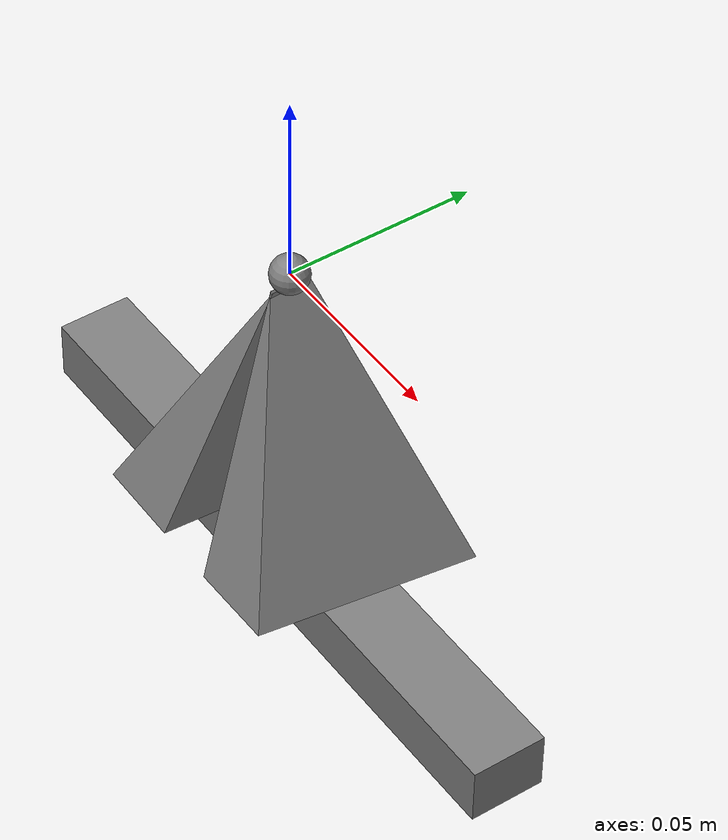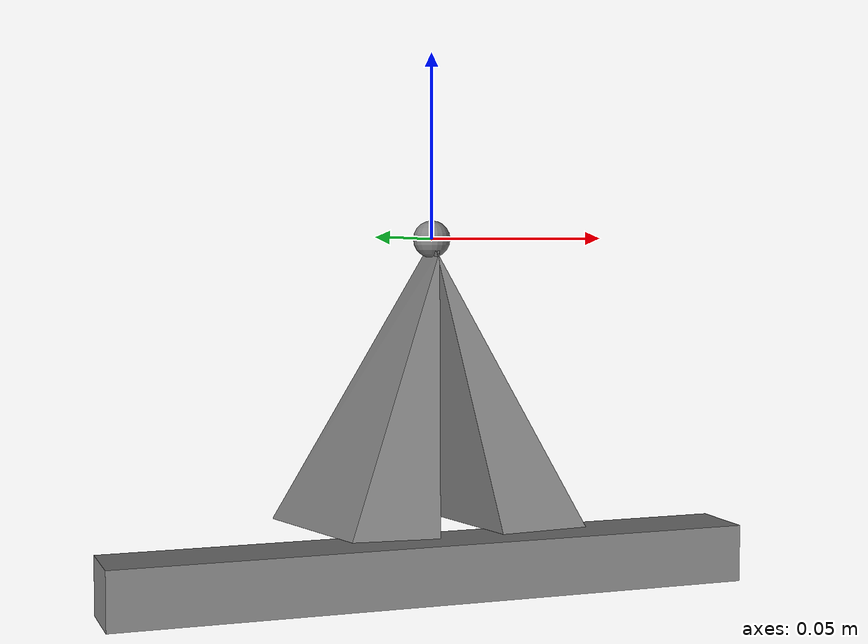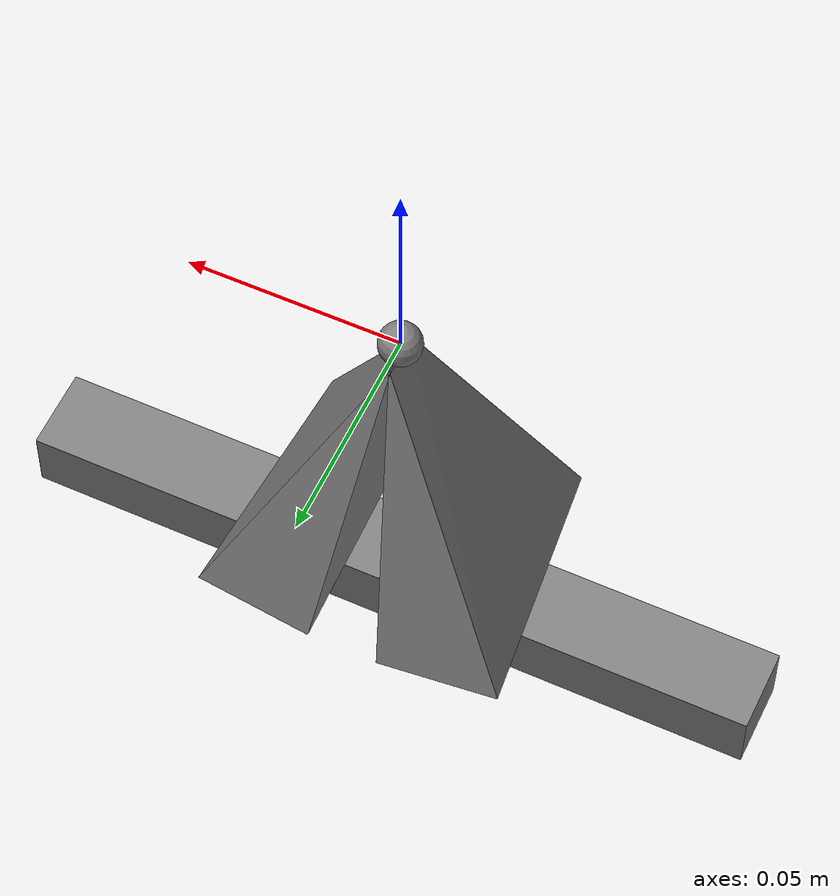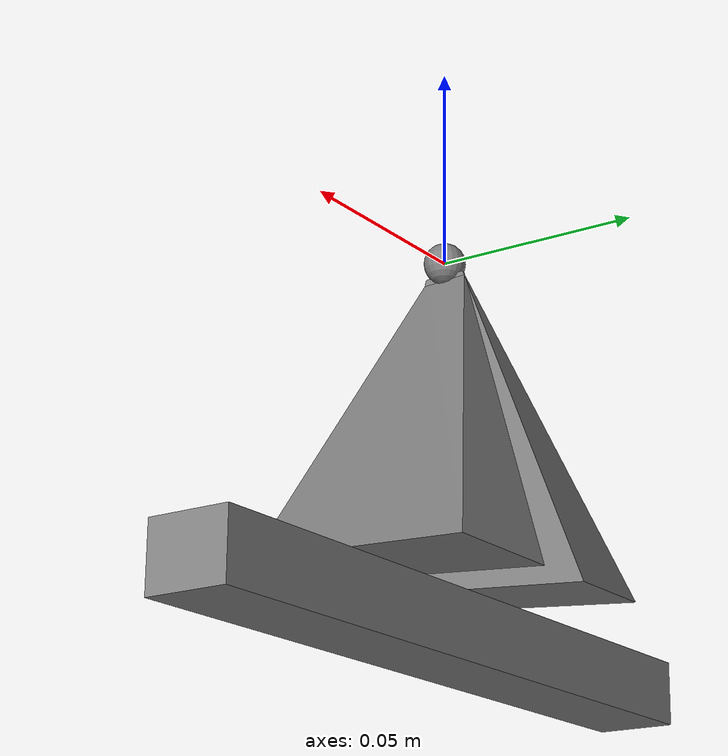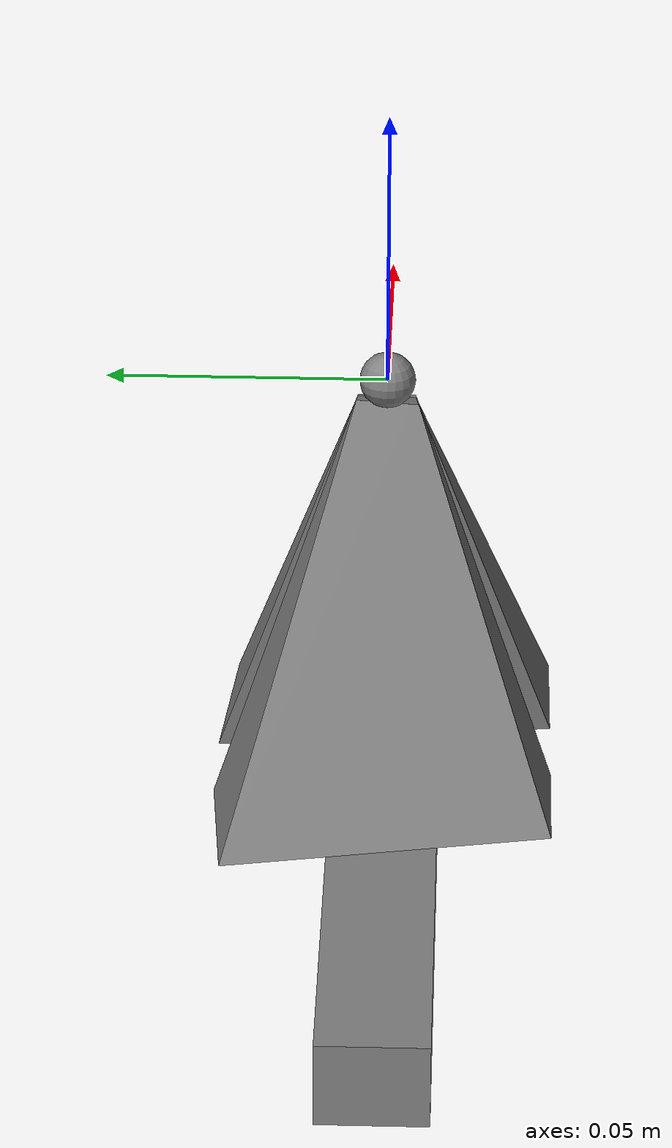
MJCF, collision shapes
<mujoco model="arx5_gripper">
    <compiler angle="radian" meshdir="assets" autolimits="true" />

    <default>
        <default class="arx5">
            <joint damping="0.005" armature="0.001" frictionloss="0.005" />
            <general ctrlrange="-30 30" />
            <default class="arx5_collision">
                <geom type="cylinder" group="3" mass="0" density="0" />
            </default>
            <default class="arx5_finger_collision">
                <geom priority="1" type="mesh" group="3" mass="0" density="0" condim="6"
                    friction="0.9 0.8 0.2" />
            </default>
        </default>
        <default class="rail">
            <joint damping="0.001" armature="0.0001" frictionloss="0.001" />
        </default>
        <default class="visual">
            <geom type="mesh" contype="0" conaffinity="0" group="2" />
        </default>

    </default>

    <asset>
        <mesh file="arx5_gripper_gear.obj" name="arx_gripper_gear" />
        <mesh file="arx5_gripper_left_finger.obj" name="arx_gripper_left_finger" />
        <mesh file="arx5_gripper_right_finger.obj" name="arx_gripper_right_finger" />
        <mesh file="arx5_gripper_collision_right_manual.obj"
            name="arx5_gripper_collision_right_manual" />
        <mesh file="arx5_gripper_collision_left_manual.obj"
            name="arx5_gripper_collision_left_manual" />
        <mesh file="arx5_gripper_motor.obj" name="arx_gripper_motor" />
    </asset>

    <worldbody>
        <body name="main">
            <freejoint />
            <geom type="sphere" size="0.001" mass="0.0001" class="visual" />
            <body name="gripper" pos="0 0 -0.15" euler="1.57079632679 0 1.57079632679">
                <site name="end_effector" pos="0.15 0 0"
                    euler="0 1.57079632679 -1.57079632679"
                />
                <inertial
                    pos="0.0471798400661976 0.000102970421835668 -0.000138510949393961"
                    mass="0.462244960775882"
                    diaginertia="0.00068 0.00036 0.00091" />
                <geom type="box" size="0.01 0.09 0.008"
                    pos="0.06 0.00 0.00"
                    quat="1 0 1 0"
                    class="arx5_collision" />
                <geom class="visual" mesh="arx_gripper_motor" />
                <body name="left_finger">
                    <joint name="left_finger_joint" axis="0 1 0"
                        range="0.001 0.045" type="slide" class="arx5"
                        damping="0" frictionloss="0" />
                    <inertial
                        pos="0 0 0"
                        mass="0.0001"
                        diaginertia="0.00068 0.00036 0.00091" />
                    <geom class="visual" mesh="arx_gripper_left_finger" />
                    <geom class="arx5_finger_collision" type="mesh"
                        mesh="arx5_gripper_collision_left_manual"
                        pos="0.0 -0.03 0" />
                </body>
                <body name="right_finger">
                    <joint name="right_finger_joint" axis="0 1 0"
                        range="-0.045 -0.001" type="slide" class="arx5"
                        damping="0" frictionloss="0" />
                    <inertial
                        pos="0 0 0"
                        mass="0.0001"
                        diaginertia="0.00068 0.00036 0.00091" />
                    <geom class="visual"
                        mesh="arx_gripper_right_finger" />
                    <geom class="arx5_finger_collision" type="mesh"
                        mesh="arx5_gripper_collision_right_manual"
                        pos="0.0 0.03 0" />
                </body>
                <geom class="visual" mesh="arx_gripper_gear" />
            </body>
        </body>
    </worldbody>

    <actuator>
        <position class="arx5" name="left_finger_joint" joint="left_finger_joint" kp="10" kv="0.5"
            ctrlrange="0.001 0.045" />
    </actuator>

    <equality>
        <joint name="gripper" joint1="left_finger_joint" joint2="right_finger_joint"
            polycoef="0.0 -1.0 0 0 0" />
    </equality>

    <contact>
        <exclude body1="left_finger" body2="right_finger" />
        <exclude body1="left_finger" body2="gripper" />
        <exclude body1="right_finger" body2="gripper" />
    </contact>
</mujoco>
